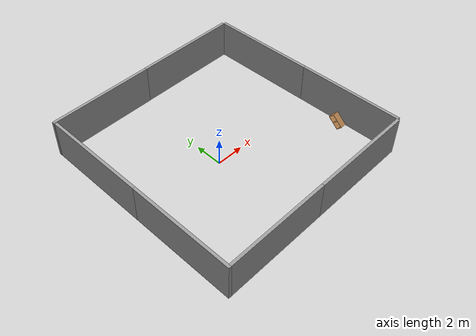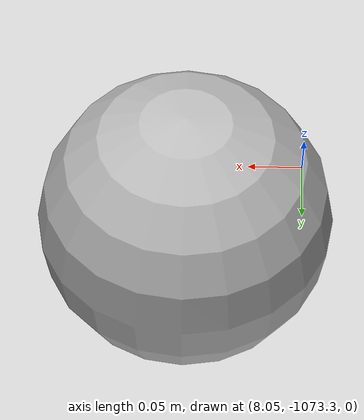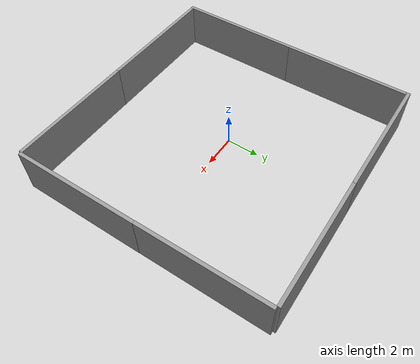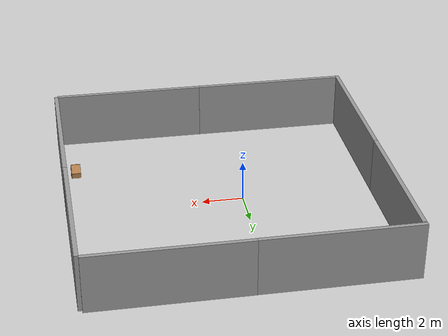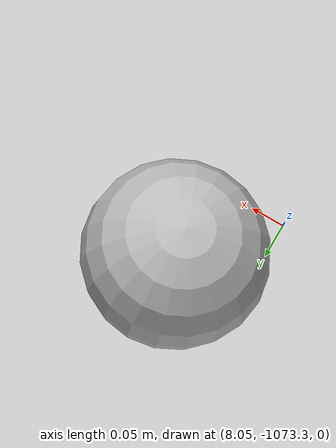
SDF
<sdf version="1.6">
 <world name="default">
  <light name="sun" type="directional">
   <pose>0 0 10 0 -0 0</pose>
   <diffuse>0.8 0.8 0.8 1</diffuse>
   <specular>0.2 0.2 0.2 1</specular>
   <attenuation>
    <range>1000</range>
    <constant>0.9</constant>
    <linear>0.01</linear>
    <quadratic>0.001</quadratic>
   </attenuation>
   <direction>-0.5 0.1 -0.9</direction>
  </light>
  <model name="ground_plane">
   <static>1</static>
   <link name="link">
    <collision name="collision">
     <geometry><plane><normal>0 0 1</normal><size>100 100</size></plane></geometry>
     <surface>
      <contact><collide_bitmask>65535</collide_bitmask></contact>
      <friction><ode><mu>100</mu><mu2>50</mu2></ode></friction>
     </surface>
    </collision>
    <visual name="visual">
     <cast_shadows>0</cast_shadows>
     <geometry><plane><normal>0 0 1</normal><size>100 100</size></plane></geometry>
     <material>
      <script><uri>file://media/materials/scripts/gazebo.material</uri><name>Gazebo/Grey</name></script>
     </material>
    </visual>
   </link>
  </model>
  <gravity>0 0 -9.8</gravity>
  <magnetic_field>6e-06 2.3e-05 -4.2e-05</magnetic_field>
  <atmosphere type="adiabatic"/>
  <physics name="default_physics" default="0" type="ode">
   <max_step_size>0.001</max_step_size>
   <real_time_factor>1</real_time_factor>
   <real_time_update_rate>1000</real_time_update_rate>
  </physics>
  <scene><ambient>0.4 0.4 0.4 1</ambient><background>0.7 0.7 0.7 1</background><shadows>1</shadows></scene>
  <spherical_coordinates>
   <surface_model>EARTH_WGS84</surface_model>
   <latitude_deg>0</latitude_deg>
   <longitude_deg>0</longitude_deg>
   <elevation>0</elevation>
   <heading_deg>0</heading_deg>
  </spherical_coordinates>
  <model name="grey_wall">
   <static>1</static>
   <link name="link">
    <pose>0 0 1.4 0 -0 0</pose>
    <collision name="collision"><geometry><box><size>7.5 0.2 2.8</size></box></geometry></collision>
    <visual name="visual">
     <cast_shadows>0</cast_shadows>
     <geometry><box><size>7.5 0.2 2.8</size></box></geometry>
     <material>
      <script>
       <uri>model://grey_wall/materials/scripts</uri>
       <uri>model://grey_wall/materials/textures</uri>
       <name>vrc/grey_wall</name>
      </script>
     </material>
    </visual>
   </link>
   <pose>-2.68137 -7.16699 0 0 -0 0</pose>
  </model>
  <model name="grey_wall_0">
   <static>1</static>
   <link name="link">
    <pose>0 0 1.4 0 -0 0</pose>
    <collision name="collision"><geometry><box><size>7.5 0.2 2.8</size></box></geometry></collision>
    <visual name="visual">
     <cast_shadows>0</cast_shadows>
     <geometry><box><size>7.5 0.2 2.8</size></box></geometry>
     <material>
      <script>
       <uri>model://grey_wall/materials/scripts</uri>
       <uri>model://grey_wall/materials/textures</uri>
       <name>vrc/grey_wall</name>
      </script>
     </material>
    </visual>
   </link>
   <pose>4.79479 -7.16846 0 0 -0 0</pose>
  </model>
  <model name="grey_wall_1">
   <static>1</static>
   <link name="link">
    <pose>0 0 1.4 0 -0 0</pose>
    <collision name="collision"><geometry><box><size>7.5 0.2 2.8</size></box></geometry></collision>
    <visual name="visual">
     <cast_shadows>0</cast_shadows>
     <geometry><box><size>7.5 0.2 2.8</size></box></geometry>
     <material>
      <script>
       <uri>model://grey_wall/materials/scripts</uri>
       <uri>model://grey_wall/materials/textures</uri>
       <name>vrc/grey_wall</name>
      </script>
     </material>
    </visual>
   </link>
   <pose>-2.85194 7.86578 0 0 -0 0</pose>
  </model>
  <model name="grey_wall_2">
   <static>1</static>
   <link name="link">
    <pose>0 0 1.4 0 -0 0</pose>
    <collision name="collision"><geometry><box><size>7.5 0.2 2.8</size></box></geometry></collision>
    <visual name="visual">
     <cast_shadows>0</cast_shadows>
     <geometry><box><size>7.5 0.2 2.8</size></box></geometry>
     <material>
      <script>
       <uri>model://grey_wall/materials/scripts</uri>
       <uri>model://grey_wall/materials/textures</uri>
       <name>vrc/grey_wall</name>
      </script>
     </material>
    </visual>
   </link>
   <pose>4.59084 7.87528 0 0 -0 0</pose>
  </model>
  <model name="grey_wall_3">
   <static>1</static>
   <link name="link">
    <pose>0 0 1.4 0 -0 0</pose>
    <collision name="collision"><geometry><box><size>7.5 0.2 2.8</size></box></geometry></collision>
    <visual name="visual">
     <cast_shadows>0</cast_shadows>
     <geometry><box><size>7.5 0.2 2.8</size></box></geometry>
     <material>
      <script>
       <uri>model://grey_wall/materials/scripts</uri>
       <uri>model://grey_wall/materials/textures</uri>
       <name>vrc/grey_wall</name>
      </script>
     </material>
    </visual>
   </link>
   <pose>8.57861 -3.40652 0 0 -0 1.58123</pose>
  </model>
  <model name="grey_wall_4">
   <static>1</static>
   <link name="link">
    <pose>0 0 1.4 0 -0 0</pose>
    <collision name="collision"><geometry><box><size>7.5 0.2 2.8</size></box></geometry></collision>
    <visual name="visual">
     <cast_shadows>0</cast_shadows>
     <geometry><box><size>7.5 0.2 2.8</size></box></geometry>
     <material>
      <script>
       <uri>model://grey_wall/materials/scripts</uri>
       <uri>model://grey_wall/materials/textures</uri>
       <name>vrc/grey_wall</name>
      </script>
     </material>
    </visual>
   </link>
   <pose>8.48385 4.07444 0 0 -0 1.58383</pose>
  </model>
  <model name="grey_wall_5">
   <static>1</static>
   <link name="link">
    <pose>0 0 1.4 0 -0 0</pose>
    <collision name="collision"><geometry><box><size>7.5 0.2 2.8</size></box></geometry></collision>
    <visual name="visual">
     <cast_shadows>0</cast_shadows>
     <geometry><box><size>7.5 0.2 2.8</size></box></geometry>
     <material>
      <script>
       <uri>model://grey_wall/materials/scripts</uri>
       <uri>model://grey_wall/materials/textures</uri>
       <name>vrc/grey_wall</name>
      </script>
     </material>
    </visual>
   </link>
   <pose>-6.5141 -3.5181 0 0 -0 1.5683</pose>
  </model>
  <model name="grey_wall_6">
   <static>1</static>
   <link name="link">
    <pose>0 0 1.4 0 -0 0</pose>
    <collision name="collision"><geometry><box><size>7.5 0.2 2.8</size></box></geometry></collision>
    <visual name="visual">
     <cast_shadows>0</cast_shadows>
     <geometry><box><size>7.5 0.2 2.8</size></box></geometry>
     <material>
      <script>
       <uri>model://grey_wall/materials/scripts</uri>
       <uri>model://grey_wall/materials/textures</uri>
       <name>vrc/grey_wall</name>
      </script>
     </material>
    </visual>
   </link>
   <pose>-6.49868 3.97996 0 0 0 -1.5724</pose>
  </model>
  <model name="frc2016_ball">
   <pose>8.15496 -1073.18 0.126959 -2.9281 0 0</pose>
   <link name="link">
    <inertial>
     <mass>0.213</mass>
     <inertia>
      <ixx>0.00322667</ixx>
      <ixy>0</ixy>
      <ixz>0</ixz>
      <iyy>0.00322667</iyy>
      <iyz>0</iyz>
      <izz>0.00322667</izz>
     </inertia>
    </inertial>
    <visual name="visual"><geometry><sphere><radius>0.127</radius></sphere></geometry></visual>
    <collision name="collision">
     <geometry><sphere><radius>0.127</radius></sphere></geometry>
     <surface>
      <bounce><restitution_coefficient>0.15937</restitution_coefficient><threshold>0</threshold></bounce>
      <contact><ode><max_vel>100</max_vel><min_depth>0.001</min_depth></ode></contact>
     </surface>
    </collision>
   </link>
  </model>
  <model name="cabinet">
   <static>1</static>
   <link name="cabinet_bottom_plate">
    <inertial>
     <pose>0 0 -1 0 -0 0</pose>
     <inertia><ixx>2.05</ixx><ixy>0</ixy><ixz>0</ixz><iyy>2.05</iyy><iyz>0</iyz><izz>2.05</izz></inertia>
     <mass>25</mass>
    </inertial>
    <collision name="cabinet_bottom_plate_geom">
     <pose>0 0 0.01 0 -0 0</pose>
     <geometry><box><size>0.45 0.45 0.02</size></box></geometry>
    </collision>
    <visual name="cabinet_bottom_plate_geom_visual">
     <pose>0 0 0.01 0 -0 0</pose>
     <geometry><box><size>0.45 0.45 0.02</size></box></geometry>
     <material>
      <script><uri>file://media/materials/scripts/gazebo.material</uri><name>Gazebo/Wood</name></script>
     </material>
    </visual>
    <collision name="cabinet_bottom_plate_geom_cabinet_back_plate">
     <pose>0.235 0 0.51 0 -0 0</pose>
     <geometry><box><size>0.02 0.45 1.02</size></box></geometry>
    </collision>
    <visual name="cabinet_bottom_plate_geom_cabinet_back_plate_visual">
     <pose>0.235 0 0.51 0 -0 0</pose>
     <geometry><box><size>0.02 0.45 1.02</size></box></geometry>
     <material>
      <script><uri>file://media/materials/scripts/gazebo.material</uri><name>Gazebo/Wood</name></script>
     </material>
    </visual>
    <collision name="cabinet_bottom_plate_geom_cabinet_left_plate">
     <pose>0 0.235 0.51 0 -0 0</pose>
     <geometry><box><size>0.45 0.02 1.02</size></box></geometry>
    </collision>
    <visual name="cabinet_bottom_plate_geom_cabinet_left_plate_visual">
     <pose>0 0.235 0.51 0 -0 0</pose>
     <geometry><box><size>0.45 0.02 1.02</size></box></geometry>
     <material>
      <script><uri>file://media/materials/scripts/gazebo.material</uri><name>Gazebo/Wood</name></script>
     </material>
    </visual>
    <collision name="cabinet_bottom_plate_geom_cabinet_middle_plate">
     <pose>0 0 0.51 0 -0 0</pose>
     <geometry><box><size>0.45 0.45 0.02</size></box></geometry>
    </collision>
    <visual name="cabinet_bottom_plate_geom_cabinet_middle_plate_visual">
     <pose>0 0 0.51 0 -0 0</pose>
     <geometry><box><size>0.45 0.45 0.02</size></box></geometry>
     <material>
      <script><uri>file://media/materials/scripts/gazebo.material</uri><name>Gazebo/Wood</name></script>
     </material>
    </visual>
    <collision name="cabinet_bottom_plate_geom_cabinet_right_plate">
     <pose>0 -0.235 0.51 0 -0 0</pose>
     <geometry><box><size>0.45 0.02 1.02</size></box></geometry>
    </collision>
    <visual name="cabinet_bottom_plate_geom_cabinet_right_plate_visual">
     <pose>0 -0.235 0.51 0 -0 0</pose>
     <geometry><box><size>0.45 0.02 1.02</size></box></geometry>
     <material>
      <script><uri>file://media/materials/scripts/gazebo.material</uri><name>Gazebo/Wood</name></script>
     </material>
    </visual>
    <collision name="cabinet_bottom_plate_geom_cabinet_top_plate">
     <pose>0 0 1.01 0 -0 0</pose>
     <geometry><box><size>0.45 0.45 0.02</size></box></geometry>
    </collision>
    <visual name="cabinet_bottom_plate_geom_cabinet_top_plate_visual">
     <pose>0 0 1.01 0 -0 0</pose>
     <geometry><box><size>0.45 0.45 0.02</size></box></geometry>
     <material>
      <script><uri>file://media/materials/scripts/gazebo.material</uri><name>Gazebo/Wood</name></script>
     </material>
    </visual>
   </link>
   <pose>7.95986 -3.59753 0.155875 -0.83594 0 0</pose>
  </model>
 </world>
</sdf>
